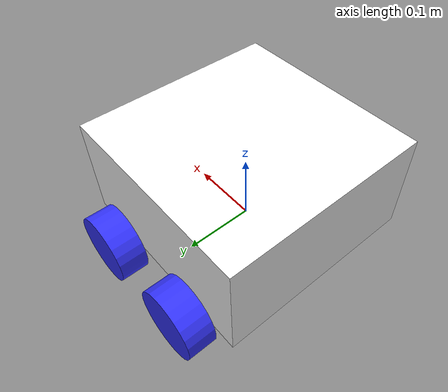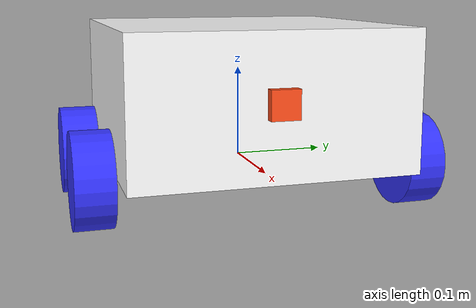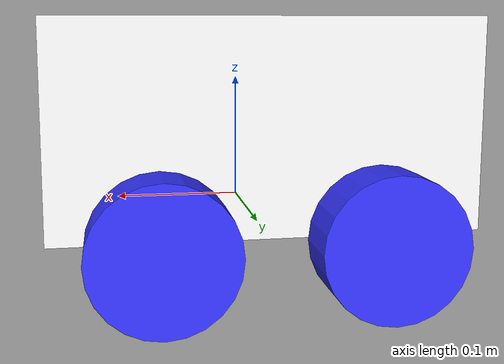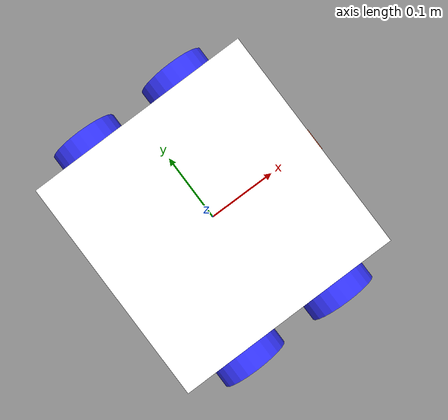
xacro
<?xml version="1.0"?>
<robot xmlns:xacro="https://www.ros.org/wiki/xacro" name="robot">

    <xacro:arg name="use_ros2_control" default="true"/>
    <xacro:arg name="sim_mode" default="false"/>

    <xacro:include filename="robot_core.xacro"/>

    <xacro:if value="$(arg use_ros2_control)">
        <xacro:include filename="ros2_control.xacro"/>
    </xacro:if>
    <xacro:unless value="$(arg use_ros2_control)">
        <xacro:include filename="gazebo_control.xacro"/>
    </xacro:unless>

    <xacro:include filename="depth_camera.xacro"/>

</robot>

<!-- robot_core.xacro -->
<robot xmlns:xacro="https://www.ros.org/wiki/xacro">

    <xacro:include filename="inertial_macros.xacro"/>

    <material name="white">
        <color rgba="1 1 1 1" />
    </material>

    <material name="orange">
        <color rgba="1 0.3 0.1 1" />
    </material>

    <material name="blue">
        <color rgba="0.2 0.2 1 1" />
    </material>

    <material name="black">
        <color rgba="0 0 0 1" />
    </material>

    <link name="base_link"/>

    <!-- CHASSIS -->
    <joint name="chassis_joint" type="fixed">
        <parent link="base_link"/>
        <child link="chassis"/>
        <origin xyz="-0.15 0 0"/>
    </joint>

    <link name="chassis">
        <visual>
            <origin xyz="0.15 0 0.075"/>
            <geometry>
                <box size="0.3 0.3 0.15"/>
            </geometry>
            <material name="white"/>
        </visual>

        <collision>
            <origin xyz="0.15 0 0.075"/>
            <geometry>
                <box size="0.3 0.3 0.15"/>
            </geometry>
        </collision>

        <xacro:inertial_box mass="0.5" x="0.3" y="0.3" z="0.15">
            <origin xyz="0.15 0 0.075" rpy="0 0 0"/>
        </xacro:inertial_box>

    </link>

    <gazebo reference="chassis">
        <material>Gazebo/White</material>
    </gazebo>

    <!-- FRONT LEFT WHEEL -->
    <joint name="front_left_wheel_joint" type="continuous">
        <parent link="base_link"/>
        <child link="front_left_wheel"/>
        <origin xyz="0.075 0.175 0" rpy="-${pi/2} 0 0"/>
        <axis xyz="0 0 1"/>
    </joint>

    <link name="front_left_wheel">
        <visual>
            <geometry>
                <cylinder radius="0.05" length="0.04"/>
            </geometry>
            <material name="blue"/>
        </visual>

        <collision>
            <geometry>
                <cylinder radius="0.05" length="0.04"/>
            </geometry>
        </collision>

        <xacro:inertial_cylinder mass="0.1" length="0.04" radius="0.05">
            <origin xyz="0 0 0" rpy="0 0 0"/>
        </xacro:inertial_cylinder>

    </link>

    <gazebo reference="front_left_wheel">
        <material>Gazebo/Blue</material>
        <mu1 value="0.0"/>
        <mu2 value="0.0"/>
    </gazebo>

    <!-- BACK LEFT WHEEL -->
    <joint name="back_left_wheel_joint" type="continuous">
        <parent link="base_link"/>
        <child link="back_left_wheel"/>
        <origin xyz="-0.075 0.175 0" rpy="-${pi/2} 0 0"/>
        <axis xyz="0 0 1"/>
    </joint>

    <link name="back_left_wheel">
        <visual>
            <geometry>
                <cylinder radius="0.05" length="0.04"/>
            </geometry>
            <material name="blue"/>
        </visual>

        <collision>
            <geometry>
                <cylinder radius="0.05" length="0.04"/>
            </geometry>
        </collision>

        <xacro:inertial_cylinder mass="0.1" length="0.04" radius="0.05">
            <origin xyz="0 0 0" rpy="0 0 0"/>
        </xacro:inertial_cylinder>

    </link>

    <gazebo reference="back_left_wheel">
        <material>Gazebo/Blue</material>
        <mu1 value="0.0"/>
        <mu2 value="0.0"/>
    </gazebo>

    <!-- FRONT RIGHT WHEEL -->
    <joint name="front_right_wheel_joint" type="continuous">
        <parent link="base_link"/>
        <child link="front_right_wheel"/>
        <origin xyz="0.075 -0.175 0" rpy="${pi/2} 0 0"/>
        <axis xyz="0 0 -1"/>
    </joint>

    <link name="front_right_wheel">
        <visual>
            <geometry>
                <cylinder radius="0.05" length="0.04"/>
            </geometry>
            <material name="blue"/>
        </visual>

        <collision>
            <geometry>
                <cylinder radius="0.05" length="0.04"/>
            </geometry>
        </collision>

        <xacro:inertial_cylinder mass="0.1" length="0.04" radius="0.05">
            <origin xyz="0 0 0" rpy="0 0 0"/>
        </xacro:inertial_cylinder>

    </link>

    <gazebo reference="front_right_wheel">
        <material>Gazebo/Blue</material>
        <mu1 value="0.0"/>
        <mu2 value="0.0"/>
    </gazebo>

    <!-- BACK RIGHT WHEEL -->
    <joint name="back_right_wheel_joint" type="continuous">
        <parent link="base_link"/>
        <child link="back_right_wheel"/>
        <origin xyz="-0.075 -0.175 0" rpy="${pi/2} 0 0"/>
        <axis xyz="0 0 -1"/>
    </joint>

    <link name="back_right_wheel">
        <visual>
            <geometry>
                <cylinder radius="0.05" length="0.04"/>
            </geometry>
            <material name="blue"/>
        </visual>

        <collision>
            <geometry>
                <cylinder radius="0.05" length="0.04"/>
            </geometry>
        </collision>

        <xacro:inertial_cylinder mass="0.1" length="0.04" radius="0.05">
            <origin xyz="0 0 0" rpy="0 0 0"/>
        </xacro:inertial_cylinder>

    </link>

    <gazebo reference="back_right_wheel">
        <material>Gazebo/Blue</material>
        <mu1 value="0.0"/>
        <mu2 value="0.0"/>
    </gazebo>

</robot>

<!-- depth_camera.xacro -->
<robot xmlns:xacro="http://www.ros.org/wiki/xacro">

    <joint name="camera_joint" type="fixed">
        <parent link="chassis"/>
        <child link="camera_link"/>
        <origin xyz="0.305 0 0.08" rpy="0 0 0"/>
    </joint>

    <link name="camera_link">
        <visual>
            <geometry>
                <box size="0.01 0.03 0.03"/>
            </geometry>
            <material name="orange"/>
        </visual>
    </link>

    <joint name="camera_optical" type="fixed">
        <parent link="camera_link"/>
        <child link="camera_link_optical"/>
        <origin xyz="0 0 0" rpy="${-pi/2} 0 ${-pi/2}"/>
    </joint>

    <link name="camera_link_optical"/>

    <gazebo reference="camera_link">
        <material>Gazebo/Red</material>

        <sensor name="camera" type="depth">
            <pose> 0 0 0 0 0 0 </pose>
            <visualize>true</visualize>
            <update_rate>10</update_rate>
            <camera>
                <horizontal_fov>1.089</horizontal_fov>
                <image>
                    <format>B8G8R8</format>
                    <width>640</width>
                    <height>480</height>
                </image>
                <clip>
                    <near>0.05</near>
                    <far>8.0</far>
                </clip>
            </camera>

            <plugin name="camera_controller" filename="libgazebo_ros_camera.so">
                <frame_name>camera_link_optical</frame_name>
                <min_depth>0.1</min_depth>
                <max_depth>100</max_depth>
            </plugin>
        </sensor>
    </gazebo>

</robot>
